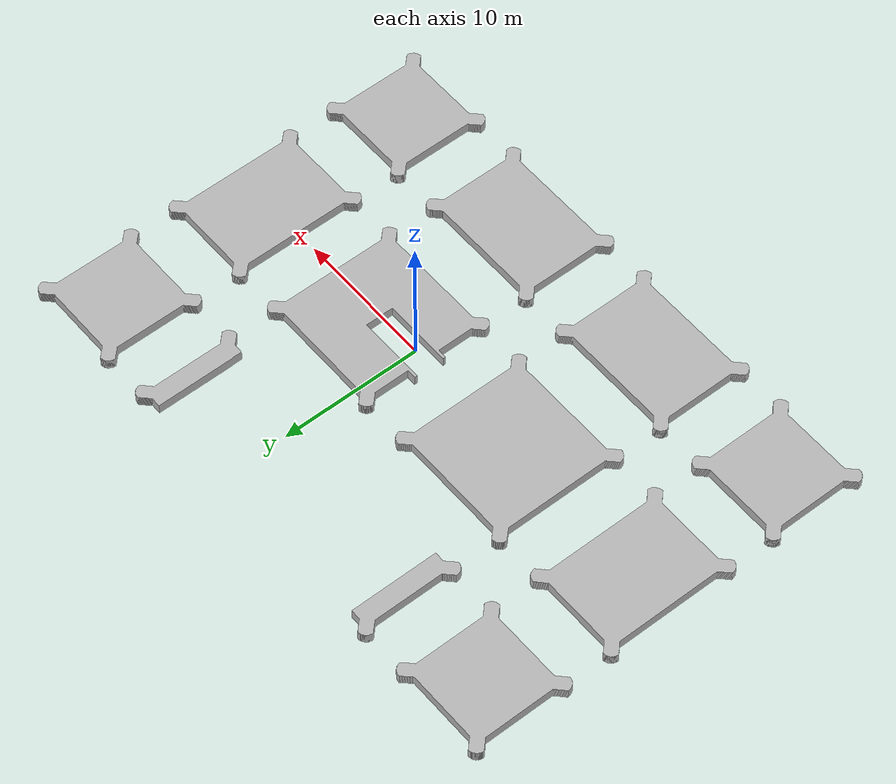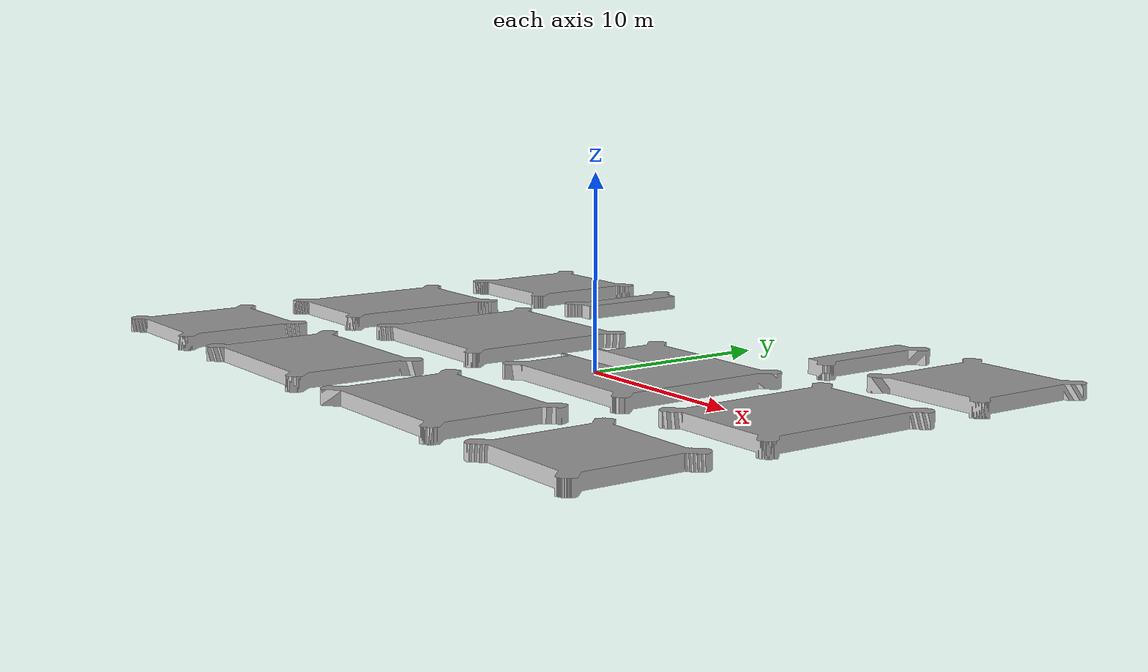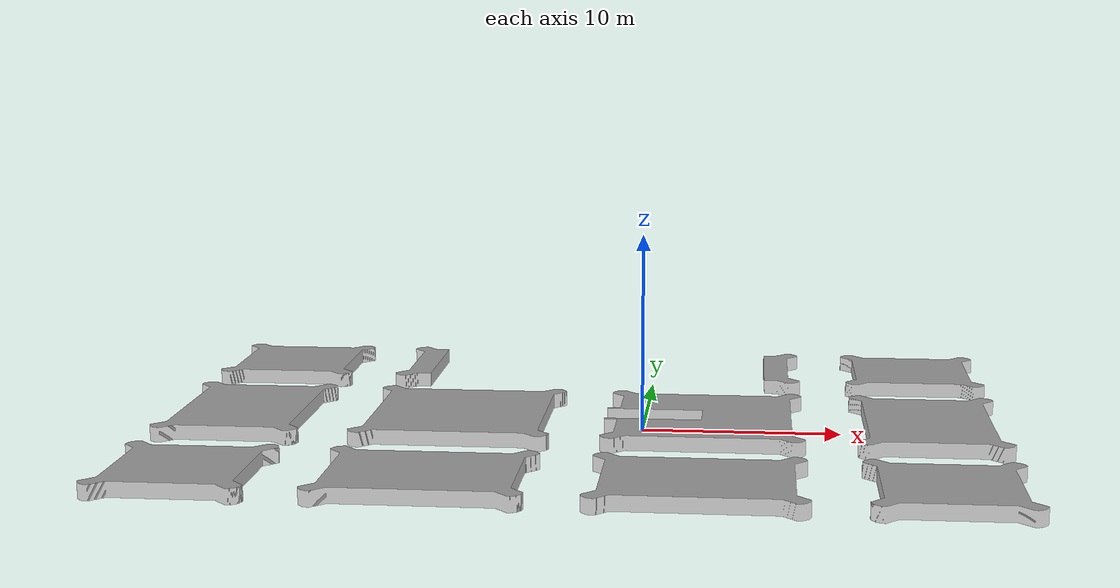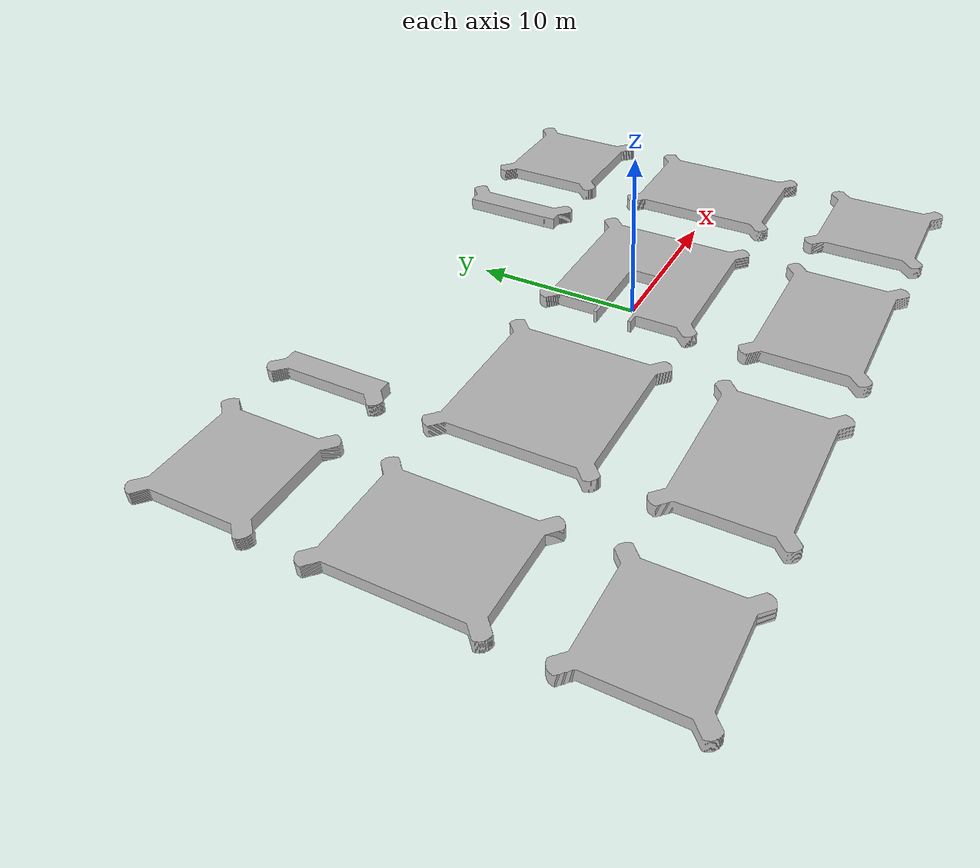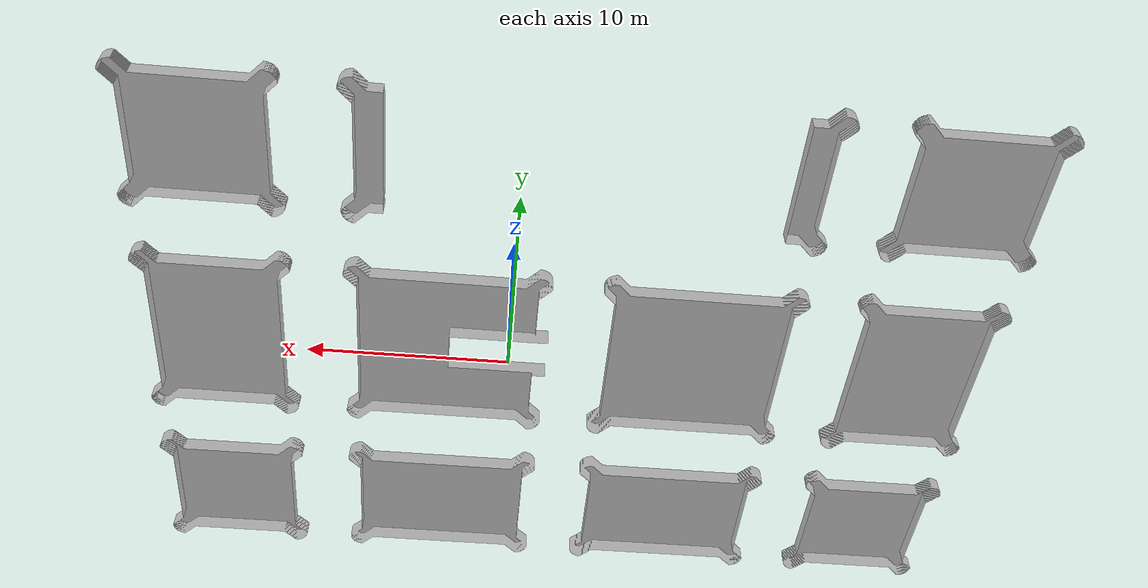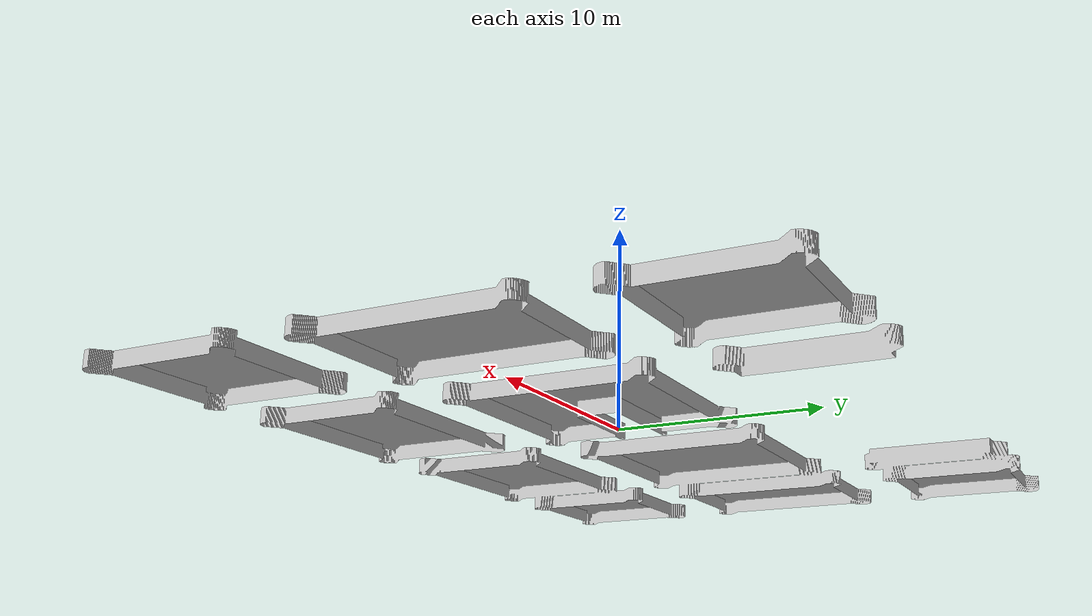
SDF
<?xml version="1.0"?>
<sdf version="1.6">
  <model name="tue_library/desks.support">
    <link name="1_link">
      <collision name="1_col">
        <geometry>
          <mesh>
            <uri>model://tue_library/desks.support/shape/heightmap.stl</uri>
          </mesh>
        </geometry>
      </collision>
      <visual name="1_vis">
        <geometry>
          <mesh>
            <uri>model://tue_library/desks.support/shape/heightmap.stl</uri>
          </mesh>
        </geometry>
      </visual>
      <pose>0 0 0 0 0 0</pose>
    </link>
    <static>true</static>
  </model>
</sdf>
